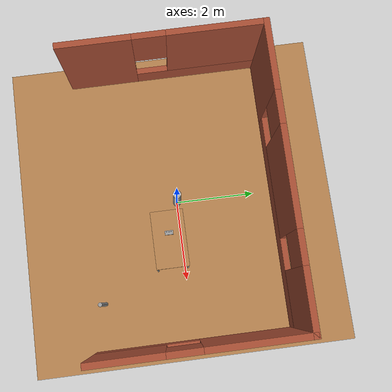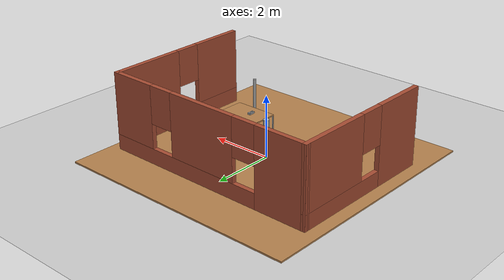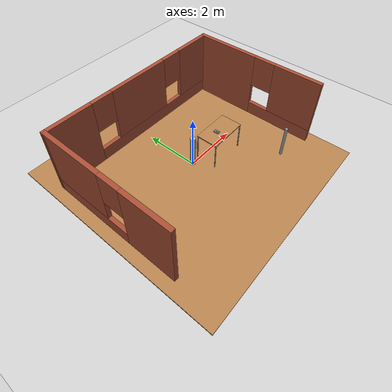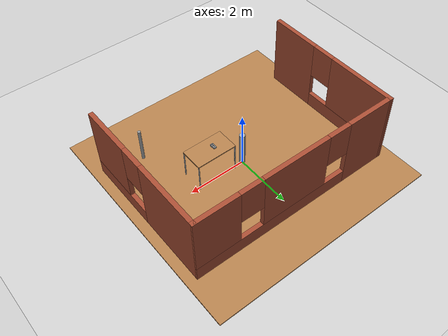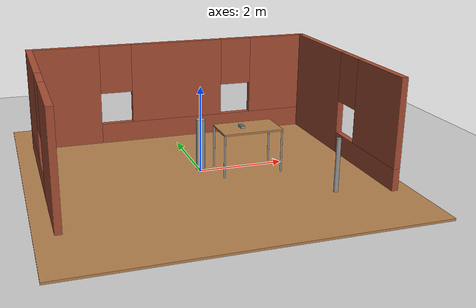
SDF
<sdf version="1.6">
 <world name="default">
  <model name="ground_plane">
   <static>1</static>
   <link name="link">
    <collision name="collision">
     <geometry><plane><normal>0 0 1</normal><size>100 100</size></plane></geometry>
     <surface><friction><ode><mu>100</mu><mu2>50</mu2></ode></friction></surface>
    </collision>
    <visual name="visual">
     <cast_shadows>0</cast_shadows>
     <geometry><plane><normal>0 0 1</normal><size>100 100</size></plane></geometry>
     <material>
      <script><uri>file://media/materials/scripts/gazebo.material</uri><name>Gazebo/Grey</name></script>
     </material>
    </visual>
   </link>
  </model>
  <model name="floor">
   <link name="link">
    <pose>0 0 0.025 0 -0 0</pose>
    <inertial>
     <mass>80</mass>
     <inertia><ixx>1</ixx><ixy>0</ixy><ixz>0</ixz><iyy>1</iyy><iyz>0</iyz><izz>1</izz></inertia>
    </inertial>
    <visual name="visual">
     <geometry><box><size>8 8 0.05</size></box></geometry>
     <material>
      <script><uri>file://media/materials/scripts/gazebo.material</uri><name>Gazebo/Wood</name></script>
      <ambient>1 1 1 1</ambient>
      <diffuse>1 1 1 1</diffuse>
      <specular>0.2 0.2 0.2 1</specular>
      <emissive>0 0 0 1</emissive>
      <shader type="vertex"><normal_map>__default__</normal_map></shader>
     </material>
    </visual>
    <collision name="collision">
     <geometry><box><size>8 8 0.05</size></box></geometry>
     <surface>
      <friction>
       <ode><mu>1</mu><mu2>1</mu2><fdir1>0 0 0</fdir1><slip1>0</slip1><slip2>0</slip2></ode>
       <torsional>
        <coefficient>1</coefficient>
        <patch_radius>0</patch_radius>
        <surface_radius>0.01</surface_radius>
        <use_patch_radius>0</use_patch_radius>
        <ode><slip>0</slip></ode>
       </torsional>
      </friction>
      <bounce><restitution_coefficient>0</restitution_coefficient><threshold>1e+06</threshold></bounce>
      <contact>
       <collide_without_contact>0</collide_without_contact>
       <collide_without_contact_bitmask>1</collide_without_contact_bitmask>
       <collide_bitmask>1</collide_bitmask>
       <ode>
        <soft_cfm>0</soft_cfm>
        <soft_erp>0.2</soft_erp>
        <kp>100000</kp>
        <kd>100</kd>
        <max_vel>100</max_vel>
        <min_depth>0.001</min_depth>
       </ode>
       <bullet>
        <split_impulse>1</split_impulse>
        <split_impulse_penetration_threshold>-0.01</split_impulse_penetration_threshold>
        <soft_cfm>0</soft_cfm>
        <soft_erp>0.2</soft_erp>
        <kp>100000</kp>
        <kd>100</kd>
       </bullet>
      </contact>
     </surface>
    </collision>
   </link>
   <static>1</static>
  </model>
  <model name="workcell_building">
   <pose>0.034132 0.070717 0.05 0 -0 0</pose>
   <link name="Wall_0">
    <pose>-3.5548 0.033432 0 0 -0 1.5708</pose>
    <visual name="Wall_0_Visual_0">
     <pose>-1.60824 0 1.25 0 -0 0</pose>
     <geometry><box><size>1.78352 0.15 2.5</size></box></geometry>
     <material>
      <script><uri>file://media/materials/scripts/gazebo.material</uri><name>Gazebo/Bricks</name></script>
      <ambient>1 1 1 1</ambient>
     </material>
    </visual>
    <collision name="Wall_0_Collision_0">
     <geometry><box><size>1.78352 0.15 2.5</size></box></geometry>
     <pose>-1.60824 0 1.25 0 -0 0</pose>
    </collision>
    <visual name="Wall_0_Visual_1">
     <pose>0.891762 0 0.25 0 -0 0</pose>
     <geometry><box><size>3.21648 0.15 0.5</size></box></geometry>
     <material>
      <script><uri>file://media/materials/scripts/gazebo.material</uri><name>Gazebo/Bricks</name></script>
      <ambient>1 1 1 1</ambient>
     </material>
    </visual>
    <collision name="Wall_0_Collision_1">
     <geometry><box><size>3.21648 0.15 0.5</size></box></geometry>
     <pose>0.891762 0 0.25 0 -0 0</pose>
    </collision>
    <visual name="Wall_0_Visual_2">
     <pose>1.29176 0 1.5 0 -0 0</pose>
     <geometry><box><size>2.41648 0.15 2</size></box></geometry>
     <material>
      <script><uri>file://media/materials/scripts/gazebo.material</uri><name>Gazebo/Bricks</name></script>
      <ambient>1 1 1 1</ambient>
     </material>
    </visual>
    <collision name="Wall_0_Collision_2">
     <geometry><box><size>2.41648 0.15 2</size></box></geometry>
     <pose>1.29176 0 1.5 0 -0 0</pose>
    </collision>
    <visual name="Wall_0_Visual_3">
     <pose>-0.316476 0 1.9 0 -0 0</pose>
     <geometry><box><size>0.8 0.15 1.2</size></box></geometry>
     <material>
      <script><uri>file://media/materials/scripts/gazebo.material</uri><name>Gazebo/Bricks</name></script>
      <ambient>1 1 1 1</ambient>
     </material>
    </visual>
    <collision name="Wall_0_Collision_3">
     <geometry><box><size>0.8 0.15 1.2</size></box></geometry>
     <pose>-0.316476 0 1.9 0 -0 0</pose>
    </collision>
   </link>
   <link name="Wall_1">
    <pose>0 2.43809 0 0 0 -0.005723</pose>
    <visual name="Wall_1_Visual_0">
     <pose>-2.75725 0 1.25 0 -0 0</pose>
     <geometry><box><size>1.74511 0.15 2.5</size></box></geometry>
     <material>
      <script><uri>file://media/materials/scripts/gazebo.material</uri><name>Gazebo/Bricks</name></script>
      <ambient>1 1 1 1</ambient>
     </material>
    </visual>
    <collision name="Wall_1_Collision_0">
     <geometry><box><size>1.74511 0.15 2.5</size></box></geometry>
     <pose>-2.75725 0 1.25 0 -0 0</pose>
    </collision>
    <visual name="Wall_1_Visual_1">
     <pose>0.872557 0 0.25 0 -0 0</pose>
     <geometry><box><size>5.5145 0.15 0.5</size></box></geometry>
     <material>
      <script><uri>file://media/materials/scripts/gazebo.material</uri><name>Gazebo/Bricks</name></script>
      <ambient>1 1 1 1</ambient>
     </material>
    </visual>
    <collision name="Wall_1_Collision_1">
     <geometry><box><size>5.5145 0.15 0.5</size></box></geometry>
     <pose>0.872557 0 0.25 0 -0 0</pose>
    </collision>
    <visual name="Wall_1_Visual_2">
     <pose>0.098372 0 1.5 0 -0 0</pose>
     <geometry><box><size>2.36613 0.15 2</size></box></geometry>
     <material>
      <script><uri>file://media/materials/scripts/gazebo.material</uri><name>Gazebo/Bricks</name></script>
      <ambient>1 1 1 1</ambient>
     </material>
    </visual>
    <collision name="Wall_1_Collision_2">
     <geometry><box><size>2.36613 0.15 2</size></box></geometry>
     <pose>0.098372 0 1.5 0 -0 0</pose>
    </collision>
    <visual name="Wall_1_Visual_3">
     <pose>2.85562 0 1.5 0 -0 0</pose>
     <geometry><box><size>1.54837 0.15 2</size></box></geometry>
     <material>
      <script><uri>file://media/materials/scripts/gazebo.material</uri><name>Gazebo/Bricks</name></script>
      <ambient>1 1 1 1</ambient>
     </material>
    </visual>
    <collision name="Wall_1_Collision_3">
     <geometry><box><size>1.54837 0.15 2</size></box></geometry>
     <pose>2.85562 0 1.5 0 -0 0</pose>
    </collision>
    <visual name="Wall_1_Visual_4">
     <pose>-1.4847 0 1.9 0 -0 0</pose>
     <geometry><box><size>0.8 0.15 1.2</size></box></geometry>
     <material>
      <script><uri>file://media/materials/scripts/gazebo.material</uri><name>Gazebo/Bricks</name></script>
      <ambient>1 1 1 1</ambient>
     </material>
    </visual>
    <collision name="Wall_1_Collision_4">
     <geometry><box><size>0.8 0.15 1.2</size></box></geometry>
     <pose>-1.4847 0 1.9 0 -0 0</pose>
    </collision>
    <visual name="Wall_1_Visual_5">
     <pose>1.68144 0 1.9 0 -0 0</pose>
     <geometry><box><size>0.8 0.15 1.2</size></box></geometry>
     <material>
      <script><uri>file://media/materials/scripts/gazebo.material</uri><name>Gazebo/Bricks</name></script>
      <ambient>1 1 1 1</ambient>
     </material>
    </visual>
    <collision name="Wall_1_Collision_5">
     <geometry><box><size>0.8 0.15 1.2</size></box></geometry>
     <pose>1.68144 0 1.9 0 -0 0</pose>
    </collision>
   </link>
   <link name="Wall_2">
    <pose>3.5548 -0.033859 0 0 0 -1.5708</pose>
    <visual name="Wall_2_Visual_0">
     <pose>-1.28551 0 1.25 0 -0 0</pose>
     <geometry><box><size>2.42899 0.15 2.5</size></box></geometry>
     <material>
      <script><uri>file://media/materials/scripts/gazebo.material</uri><name>Gazebo/Bricks</name></script>
      <ambient>1 1 1 1</ambient>
     </material>
    </visual>
    <collision name="Wall_2_Collision_0">
     <geometry><box><size>2.42899 0.15 2.5</size></box></geometry>
     <pose>-1.28551 0 1.25 0 -0 0</pose>
    </collision>
    <visual name="Wall_2_Visual_1">
     <pose>1.21449 0 0.25 0 -0 0</pose>
     <geometry><box><size>2.57101 0.15 0.5</size></box></geometry>
     <material>
      <script><uri>file://media/materials/scripts/gazebo.material</uri><name>Gazebo/Bricks</name></script>
      <ambient>1 1 1 1</ambient>
     </material>
    </visual>
    <collision name="Wall_2_Collision_1">
     <geometry><box><size>2.57101 0.15 0.5</size></box></geometry>
     <pose>1.21449 0 0.25 0 -0 0</pose>
    </collision>
    <visual name="Wall_2_Visual_2">
     <pose>1.61449 0 1.5 0 -0 0</pose>
     <geometry><box><size>1.77101 0.15 2</size></box></geometry>
     <material>
      <script><uri>file://media/materials/scripts/gazebo.material</uri><name>Gazebo/Bricks</name></script>
      <ambient>1 1 1 1</ambient>
     </material>
    </visual>
    <collision name="Wall_2_Collision_2">
     <geometry><box><size>1.77101 0.15 2</size></box></geometry>
     <pose>1.61449 0 1.5 0 -0 0</pose>
    </collision>
    <visual name="Wall_2_Visual_3">
     <pose>0.328986 0 1.9 0 -0 0</pose>
     <geometry><box><size>0.8 0.15 1.2</size></box></geometry>
     <material>
      <script><uri>file://media/materials/scripts/gazebo.material</uri><name>Gazebo/Bricks</name></script>
      <ambient>1 1 1 1</ambient>
     </material>
    </visual>
    <collision name="Wall_2_Collision_3">
     <geometry><box><size>0.8 0.15 1.2</size></box></geometry>
     <pose>0.328986 0 1.9 0 -0 0</pose>
    </collision>
   </link>
   <static>1</static>
  </model>
  <model name="robot_fixed_box">
   <link name="link">
    <inertial>
     <mass>30</mass>
     <inertia><ixx>1</ixx><ixy>0</ixy><ixz>0</ixz><iyy>1</iyy><iyz>0</iyz><izz>1</izz></inertia>
    </inertial>
    <visual name="visual">
     <geometry><cylinder><radius>0.1</radius><length>1.2</length></cylinder></geometry>
     <material>
      <script><name>Gazebo/Grey</name><uri>file://media/materials/scripts/gazebo.material</uri></script>
      <ambient>0.3 0.3 0.3 1</ambient>
      <diffuse>0.7 0.7 0.7 1</diffuse>
      <specular>0.01 0.01 0.01 1</specular>
      <emissive>0 0 0 1</emissive>
      <shader type="vertex"><normal_map>__default__</normal_map></shader>
     </material>
    </visual>
    <collision name="collision">
     <geometry><cylinder><radius>0.1</radius><length>1.2</length></cylinder></geometry>
     <surface>
      <friction>
       <ode><mu>1</mu><mu2>1</mu2><fdir1>0 0 0</fdir1><slip1>0</slip1><slip2>0</slip2></ode>
       <torsional>
        <coefficient>1</coefficient>
        <patch_radius>0</patch_radius>
        <surface_radius>0</surface_radius>
        <use_patch_radius>1</use_patch_radius>
        <ode><slip>0</slip></ode>
       </torsional>
      </friction>
      <bounce><restitution_coefficient>0</restitution_coefficient><threshold>1e+06</threshold></bounce>
      <contact>
       <collide_without_contact>0</collide_without_contact>
       <collide_without_contact_bitmask>1</collide_without_contact_bitmask>
       <collide_bitmask>1</collide_bitmask>
       <ode>
        <soft_cfm>0</soft_cfm>
        <soft_erp>0.2</soft_erp>
        <kp>1e+13</kp>
        <kd>1</kd>
        <max_vel>0.01</max_vel>
        <min_depth>0</min_depth>
       </ode>
       <bullet>
        <split_impulse>1</split_impulse>
        <split_impulse_penetration_threshold>-0.01</split_impulse_penetration_threshold>
        <soft_cfm>0</soft_cfm>
        <soft_erp>0.2</soft_erp>
        <kp>1e+13</kp>
        <kd>1</kd>
       </bullet>
      </contact>
     </surface>
    </collision>
   </link>
   <static>1</static>
   <pose>0 0 0.65 0 -0 0</pose>
  </model>
  <model name="kinect_fixed_box">
   <link name="link">
    <inertial>
     <mass>20</mass>
     <inertia><ixx>1</ixx><ixy>0</ixy><ixz>0</ixz><iyy>1</iyy><iyz>0</iyz><izz>1</izz></inertia>
    </inertial>
    <visual name="visual">
     <geometry><cylinder><radius>0.05</radius><length>1.2</length></cylinder></geometry>
     <material>
      <script><name>Gazebo/Grey</name><uri>file://media/materials/scripts/gazebo.material</uri></script>
      <ambient>0.3 0.3 0.3 1</ambient>
      <diffuse>0.7 0.7 0.7 1</diffuse>
      <specular>0.01 0.01 0.01 1</specular>
      <emissive>0 0 0 1</emissive>
      <shader type="vertex"><normal_map>__default__</normal_map></shader>
     </material>
    </visual>
    <collision name="collision">
     <geometry><cylinder><radius>0.05</radius><length>1.2</length></cylinder></geometry>
     <surface>
      <friction>
       <ode><mu>1</mu><mu2>1</mu2><fdir1>0 0 0</fdir1><slip1>0</slip1><slip2>0</slip2></ode>
       <torsional>
        <coefficient>1</coefficient>
        <patch_radius>0</patch_radius>
        <surface_radius>0</surface_radius>
        <use_patch_radius>1</use_patch_radius>
        <ode><slip>0</slip></ode>
       </torsional>
      </friction>
      <bounce><restitution_coefficient>0</restitution_coefficient><threshold>1e+06</threshold></bounce>
      <contact>
       <collide_without_contact>0</collide_without_contact>
       <collide_without_contact_bitmask>1</collide_without_contact_bitmask>
       <collide_bitmask>1</collide_bitmask>
       <ode>
        <soft_cfm>0</soft_cfm>
        <soft_erp>0.2</soft_erp>
        <kp>1e+13</kp>
        <kd>1</kd>
        <max_vel>0.01</max_vel>
        <min_depth>0</min_depth>
       </ode>
       <bullet>
        <split_impulse>1</split_impulse>
        <split_impulse_penetration_threshold>-0.01</split_impulse_penetration_threshold>
        <soft_cfm>0</soft_cfm>
        <soft_erp>0.2</soft_erp>
        <kp>1e+13</kp>
        <kd>1</kd>
       </bullet>
      </contact>
     </surface>
    </collision>
   </link>
   <static>1</static>
   <pose>2.36769 -2.11193 0.65 0 -0 0</pose>
  </model>
  <model name="table">
   <link name="link">
    <inertial>
     <inertia><ixx>1</ixx><ixy>0</ixy><ixz>0</ixz><iyy>1</iyy><iyz>0</iyz><izz>1</izz></inertia>
     <mass>1</mass>
    </inertial>
    <visual name="visual1">
     <pose>0 0 1 0 -0 0</pose>
     <geometry><box><size>1.4 0.8 0.04</size></box></geometry>
     <material>
      <script><uri>file://media/materials/scripts/gazebo.material</uri><name>Gazebo/Wood</name></script>
      <ambient>1 1 1 1</ambient>
      <diffuse>1 1 1 1</diffuse>
      <specular>0.2 0.2 0.2 1</specular>
      <emissive>0 0 0 1</emissive>
     </material>
    </visual>
    <visual name="front_left_leg">
     <pose>0.68 0.38 0.5 0 -0 0</pose>
     <geometry><cylinder><radius>0.02</radius><length>1</length></cylinder></geometry>
     <material>
      <script><uri>file://media/materials/scripts/gazebo.material</uri><name>Gazebo/Grey</name></script>
      <ambient>0.3 0.3 0.3 1</ambient>
      <diffuse>0.7 0.7 0.7 1</diffuse>
      <specular>0.01 0.01 0.01 1</specular>
      <emissive>0 0 0 1</emissive>
     </material>
    </visual>
    <visual name="front_right_leg">
     <pose>0.68 -0.38 0.5 0 -0 0</pose>
     <geometry><cylinder><radius>0.02</radius><length>1</length></cylinder></geometry>
     <material>
      <script><uri>file://media/materials/scripts/gazebo.material</uri><name>Gazebo/Grey</name></script>
      <ambient>0.3 0.3 0.3 1</ambient>
      <diffuse>0.7 0.7 0.7 1</diffuse>
      <specular>0.01 0.01 0.01 1</specular>
      <emissive>0 0 0 1</emissive>
     </material>
    </visual>
    <visual name="back_right_leg">
     <pose>-0.68 -0.38 0.5 0 -0 0</pose>
     <geometry><cylinder><radius>0.02</radius><length>1</length></cylinder></geometry>
     <material>
      <script><uri>file://media/materials/scripts/gazebo.material</uri><name>Gazebo/Grey</name></script>
      <ambient>0.3 0.3 0.3 1</ambient>
      <diffuse>0.7 0.7 0.7 1</diffuse>
      <specular>0.01 0.01 0.01 1</specular>
      <emissive>0 0 0 1</emissive>
     </material>
    </visual>
    <visual name="back_left_leg">
     <pose>-0.68 0.38 0.5 0 -0 0</pose>
     <geometry><cylinder><radius>0.02</radius><length>1</length></cylinder></geometry>
     <material>
      <script><uri>file://media/materials/scripts/gazebo.material</uri><name>Gazebo/Grey</name></script>
      <ambient>0.3 0.3 0.3 1</ambient>
      <diffuse>0.7 0.7 0.7 1</diffuse>
      <specular>0.01 0.01 0.01 1</specular>
      <emissive>0 0 0 1</emissive>
     </material>
    </visual>
    <collision name="surface">
     <pose>0 0 1 0 -0 0</pose>
     <geometry><box><size>1.5 0.8 0.03</size></box></geometry>
     <surface>
      <friction>
       <ode><mu>0.6</mu><mu2>0.6</mu2><fdir1>0 0 0</fdir1><slip1>0</slip1><slip2>0</slip2></ode>
       <torsional>
        <coefficient>1</coefficient>
        <patch_radius>0</patch_radius>
        <surface_radius>0</surface_radius>
        <use_patch_radius>1</use_patch_radius>
        <ode><slip>0</slip></ode>
       </torsional>
      </friction>
      <bounce><restitution_coefficient>0</restitution_coefficient><threshold>1e+06</threshold></bounce>
      <contact>
       <collide_without_contact>0</collide_without_contact>
       <collide_without_contact_bitmask>1</collide_without_contact_bitmask>
       <collide_bitmask>1</collide_bitmask>
       <ode>
        <soft_cfm>0</soft_cfm>
        <soft_erp>0.2</soft_erp>
        <kp>1e+13</kp>
        <kd>1</kd>
        <max_vel>0.01</max_vel>
        <min_depth>0</min_depth>
       </ode>
       <bullet>
        <split_impulse>1</split_impulse>
        <split_impulse_penetration_threshold>-0.01</split_impulse_penetration_threshold>
        <soft_cfm>0</soft_cfm>
        <soft_erp>0.2</soft_erp>
        <kp>1e+13</kp>
        <kd>1</kd>
       </bullet>
      </contact>
     </surface>
    </collision>
    <collision name="front_right_leg">
     <pose>0.68 -0.38 0.5 0 -0 0</pose>
     <geometry><cylinder><radius>0.02</radius><length>1</length></cylinder></geometry>
     <surface>
      <friction>
       <ode><mu>1</mu><mu2>1</mu2><fdir1>0 0 0</fdir1><slip1>0</slip1><slip2>0</slip2></ode>
       <torsional>
        <coefficient>1</coefficient>
        <patch_radius>0</patch_radius>
        <surface_radius>0</surface_radius>
        <use_patch_radius>1</use_patch_radius>
        <ode><slip>0</slip></ode>
       </torsional>
      </friction>
      <bounce><restitution_coefficient>0</restitution_coefficient><threshold>1e+06</threshold></bounce>
      <contact>
       <collide_without_contact>0</collide_without_contact>
       <collide_without_contact_bitmask>1</collide_without_contact_bitmask>
       <collide_bitmask>1</collide_bitmask>
       <ode>
        <soft_cfm>0</soft_cfm>
        <soft_erp>0.2</soft_erp>
        <kp>1e+13</kp>
        <kd>1</kd>
        <max_vel>0.01</max_vel>
        <min_depth>0</min_depth>
       </ode>
       <bullet>
        <split_impulse>1</split_impulse>
        <split_impulse_penetration_threshold>-0.01</split_impulse_penetration_threshold>
        <soft_cfm>0</soft_cfm>
        <soft_erp>0.2</soft_erp>
        <kp>1e+13</kp>
        <kd>1</kd>
       </bullet>
      </contact>
     </surface>
    </collision>
    <collision name="front_left_leg">
     <pose>0.68 0.38 0.5 0 -0 0</pose>
     <geometry><cylinder><radius>0.02</radius><length>1</length></cylinder></geometry>
     <surface>
      <friction>
       <ode><mu>1</mu><mu2>1</mu2><fdir1>0 0 0</fdir1><slip1>0</slip1><slip2>0</slip2></ode>
       <torsional>
        <coefficient>1</coefficient>
        <patch_radius>0</patch_radius>
        <surface_radius>0</surface_radius>
        <use_patch_radius>1</use_patch_radius>
        <ode><slip>0</slip></ode>
       </torsional>
      </friction>
      <bounce><restitution_coefficient>0</restitution_coefficient><threshold>1e+06</threshold></bounce>
      <contact>
       <collide_without_contact>0</collide_without_contact>
       <collide_without_contact_bitmask>1</collide_without_contact_bitmask>
       <collide_bitmask>1</collide_bitmask>
       <ode>
        <soft_cfm>0</soft_cfm>
        <soft_erp>0.2</soft_erp>
        <kp>1e+13</kp>
        <kd>1</kd>
        <max_vel>0.01</max_vel>
        <min_depth>0</min_depth>
       </ode>
       <bullet>
        <split_impulse>1</split_impulse>
        <split_impulse_penetration_threshold>-0.01</split_impulse_penetration_threshold>
        <soft_cfm>0</soft_cfm>
        <soft_erp>0.2</soft_erp>
        <kp>1e+13</kp>
        <kd>1</kd>
       </bullet>
      </contact>
     </surface>
    </collision>
    <collision name="back_left_leg">
     <pose>-0.68 0.38 0.5 0 -0 0</pose>
     <geometry><cylinder><radius>0.02</radius><length>1</length></cylinder></geometry>
     <surface>
      <friction>
       <ode><mu>1</mu><mu2>1</mu2><fdir1>0 0 0</fdir1><slip1>0</slip1><slip2>0</slip2></ode>
       <torsional>
        <coefficient>1</coefficient>
        <patch_radius>0</patch_radius>
        <surface_radius>0</surface_radius>
        <use_patch_radius>1</use_patch_radius>
        <ode><slip>0</slip></ode>
       </torsional>
      </friction>
      <bounce><restitution_coefficient>0</restitution_coefficient><threshold>1e+06</threshold></bounce>
      <contact>
       <collide_without_contact>0</collide_without_contact>
       <collide_without_contact_bitmask>1</collide_without_contact_bitmask>
       <collide_bitmask>1</collide_bitmask>
       <ode>
        <soft_cfm>0</soft_cfm>
        <soft_erp>0.2</soft_erp>
        <kp>1e+13</kp>
        <kd>1</kd>
        <max_vel>0.01</max_vel>
        <min_depth>0</min_depth>
       </ode>
       <bullet>
        <split_impulse>1</split_impulse>
        <split_impulse_penetration_threshold>-0.01</split_impulse_penetration_threshold>
        <soft_cfm>0</soft_cfm>
        <soft_erp>0.2</soft_erp>
        <kp>1e+13</kp>
        <kd>1</kd>
       </bullet>
      </contact>
     </surface>
    </collision>
    <collision name="back_right_leg">
     <pose>-0.68 -0.38 0.5 0 -0 0</pose>
     <geometry><cylinder><radius>0.02</radius><length>1</length></cylinder></geometry>
     <surface>
      <friction>
       <ode><mu>1</mu><mu2>1</mu2><fdir1>0 0 0</fdir1><slip1>0</slip1><slip2>0</slip2></ode>
       <torsional>
        <coefficient>1</coefficient>
        <patch_radius>0</patch_radius>
        <surface_radius>0</surface_radius>
        <use_patch_radius>1</use_patch_radius>
        <ode><slip>0</slip></ode>
       </torsional>
      </friction>
      <bounce><restitution_coefficient>0</restitution_coefficient><threshold>1e+06</threshold></bounce>
      <contact>
       <collide_without_contact>0</collide_without_contact>
       <collide_without_contact_bitmask>1</collide_without_contact_bitmask>
       <collide_bitmask>1</collide_bitmask>
       <ode>
        <soft_cfm>0</soft_cfm>
        <soft_erp>0.2</soft_erp>
        <kp>1e+13</kp>
        <kd>1</kd>
        <max_vel>0.01</max_vel>
        <min_depth>0</min_depth>
       </ode>
       <bullet>
        <split_impulse>1</split_impulse>
        <split_impulse_penetration_threshold>-0.01</split_impulse_penetration_threshold>
        <soft_cfm>0</soft_cfm>
        <soft_erp>0.2</soft_erp>
        <kp>1e+13</kp>
        <kd>1</kd>
       </bullet>
      </contact>
     </surface>
    </collision>
   </link>
   <static>1</static>
   <pose>1.02752 -0.311864 0.05 0 -0 0</pose>
  </model>
  <model name="baseplate">
   <link name="link">
    <inertial>
     <mass>1</mass>
     <inertia>
      <ixx>0.166667</ixx>
      <ixy>0</ixy>
      <ixz>0</ixz>
      <iyy>0.166667</iyy>
      <iyz>0</iyz>
      <izz>0.166667</izz>
     </inertia>
    </inertial>
    <visual name="visual">
     <geometry><mesh><uri>model://50-baseplate/meshes/baseplate.dae</uri><scale>1 1 1</scale></mesh></geometry>
     <material>
      <lighting>1</lighting>
      <script><uri>file://media/materials/scripts/gazebo.material</uri><name>Gazebo/Grey</name></script>
      <ambient>0.3 0.3 0.3 1</ambient>
      <diffuse>0.7 0.7 0.7 1</diffuse>
      <specular>0.01 0.01 0.01 1</specular>
      <emissive>0 0 0 1</emissive>
     </material>
    </visual>
    <collision name="collision">
     <geometry><mesh><uri>model://50-baseplate/meshes/baseplate.dae</uri><scale>1 1 1</scale></mesh></geometry>
     <surface>
      <friction>
       <ode><mu>1</mu><mu2>1</mu2><fdir1>0 0 0</fdir1><slip1>0</slip1><slip2>0</slip2></ode>
       <torsional>
        <coefficient>1</coefficient>
        <patch_radius>0</patch_radius>
        <surface_radius>0</surface_radius>
        <use_patch_radius>1</use_patch_radius>
        <ode><slip>0</slip></ode>
       </torsional>
      </friction>
      <bounce><restitution_coefficient>0</restitution_coefficient><threshold>1e+06</threshold></bounce>
      <contact>
       <collide_without_contact>0</collide_without_contact>
       <collide_without_contact_bitmask>1</collide_without_contact_bitmask>
       <collide_bitmask>1</collide_bitmask>
       <ode>
        <soft_cfm>0</soft_cfm>
        <soft_erp>0.2</soft_erp>
        <kp>1e+13</kp>
        <kd>1</kd>
        <max_vel>0.01</max_vel>
        <min_depth>0</min_depth>
       </ode>
       <bullet>
        <split_impulse>1</split_impulse>
        <split_impulse_penetration_threshold>-0.01</split_impulse_penetration_threshold>
        <soft_cfm>0</soft_cfm>
        <soft_erp>0.2</soft_erp>
        <kp>1e+13</kp>
        <kd>1</kd>
       </bullet>
      </contact>
     </surface>
    </collision>
   </link>
   <static>0</static>
   <pose>0.880629 -0.306869 1.095 2e-06 -2e-06 -1.57371</pose>
  </model>
 </world>
</sdf>
